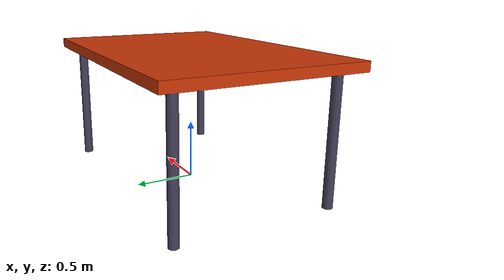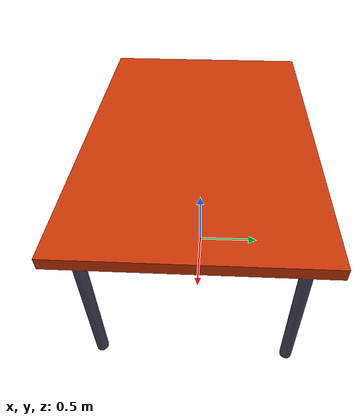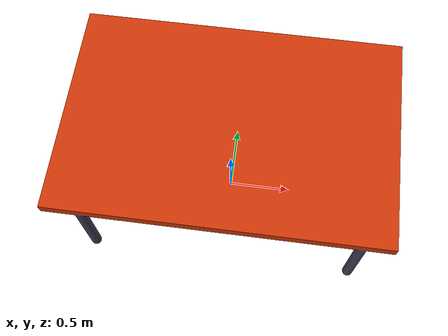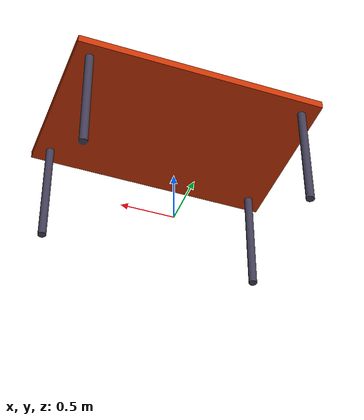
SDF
<?xml version='1.0' ?>
<sdf version='1.6'>
  <model name='Mesa'>
    <static>true</static>
    <link name='link'>
      <collision name='collision'>
        <geometry>
          <mesh>
            <uri>model://mesa/meshes/collision/mesa.stl</uri>
          </mesh>
        </geometry>
      </collision>
      <visual name='visual'>
        <geometry>
          <mesh>
            <uri>model://mesa/meshes/visual/mesa.dae</uri>
          </mesh>
        </geometry>
      </visual>
    </link>
  </model>
</sdf>
